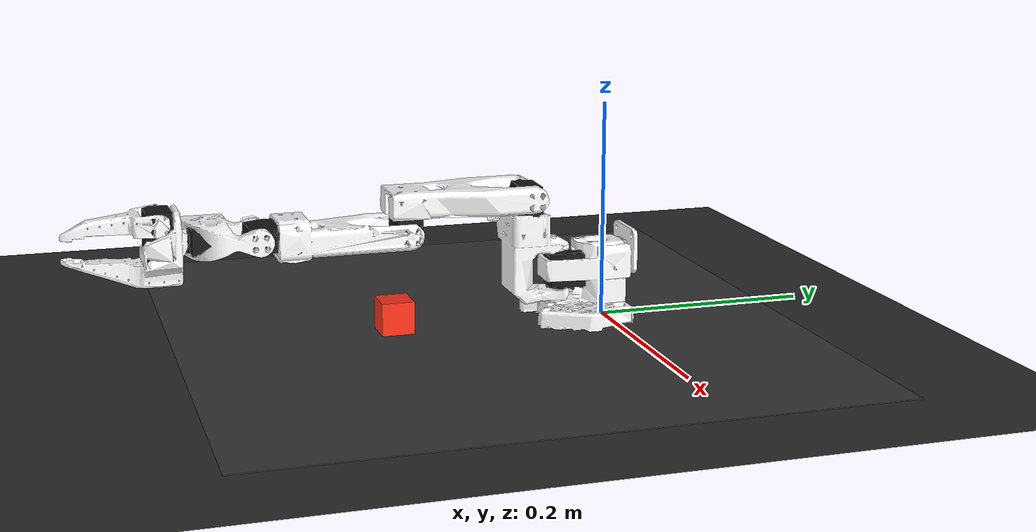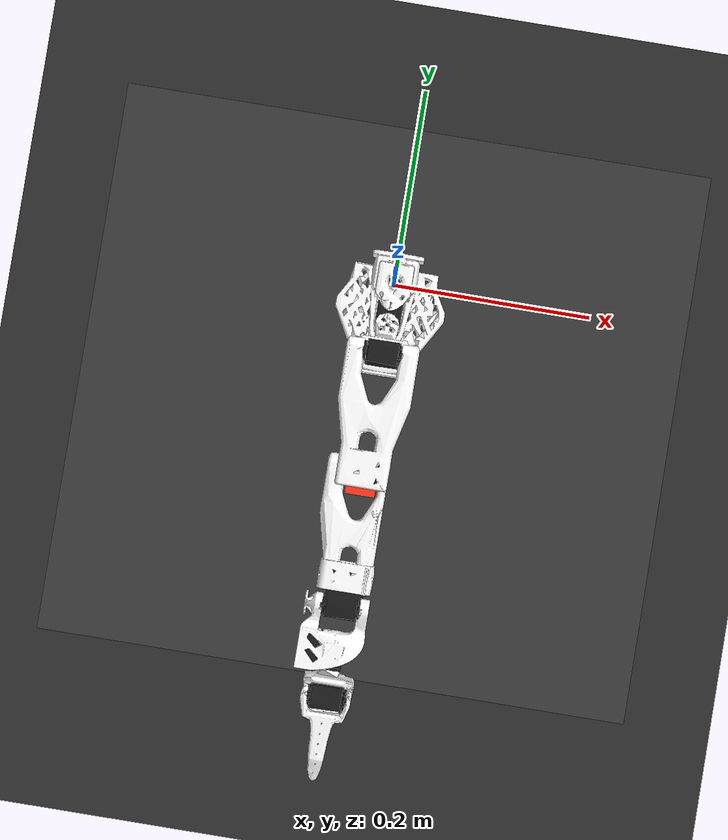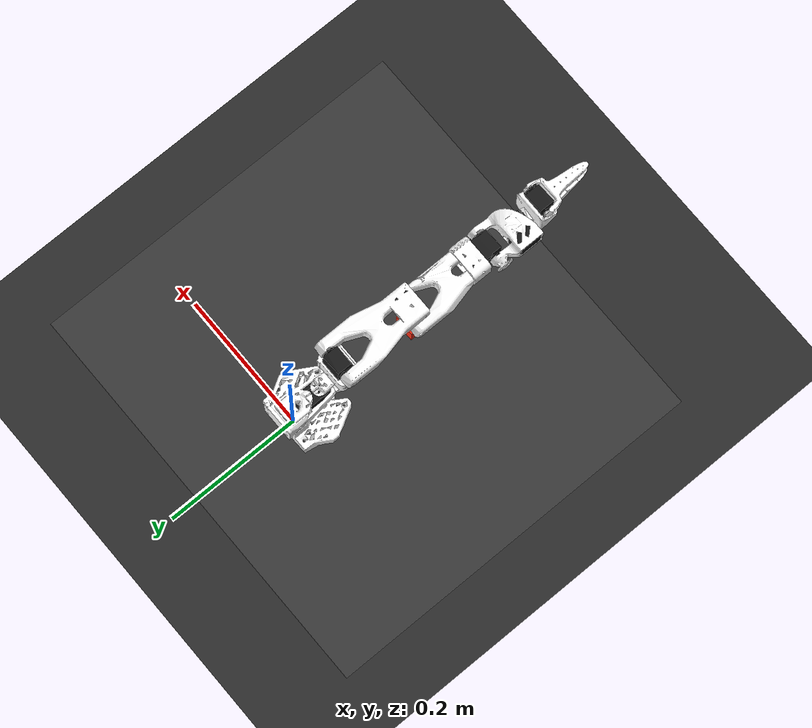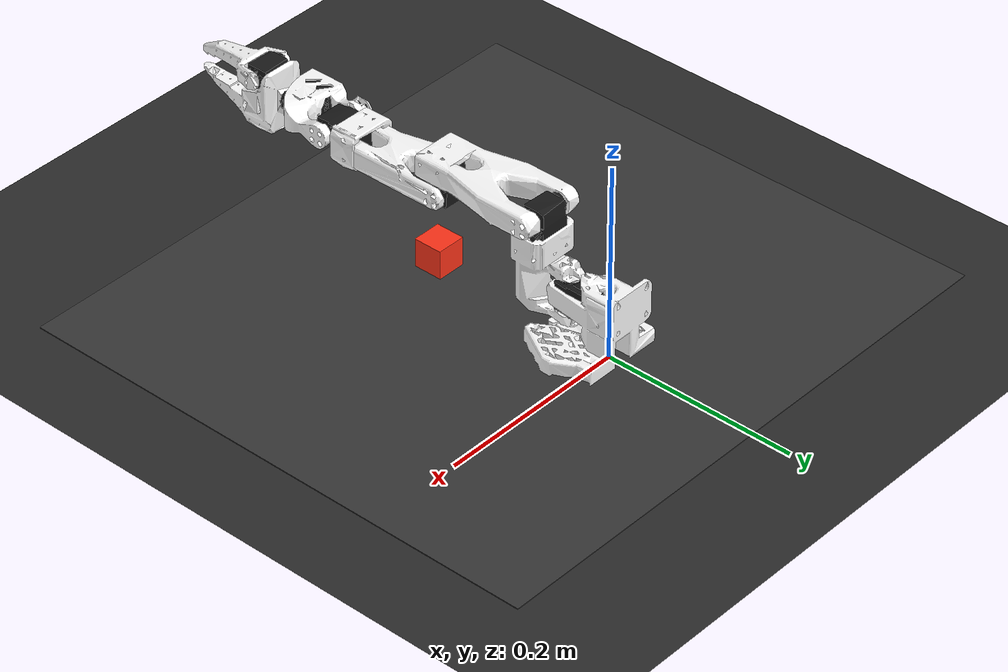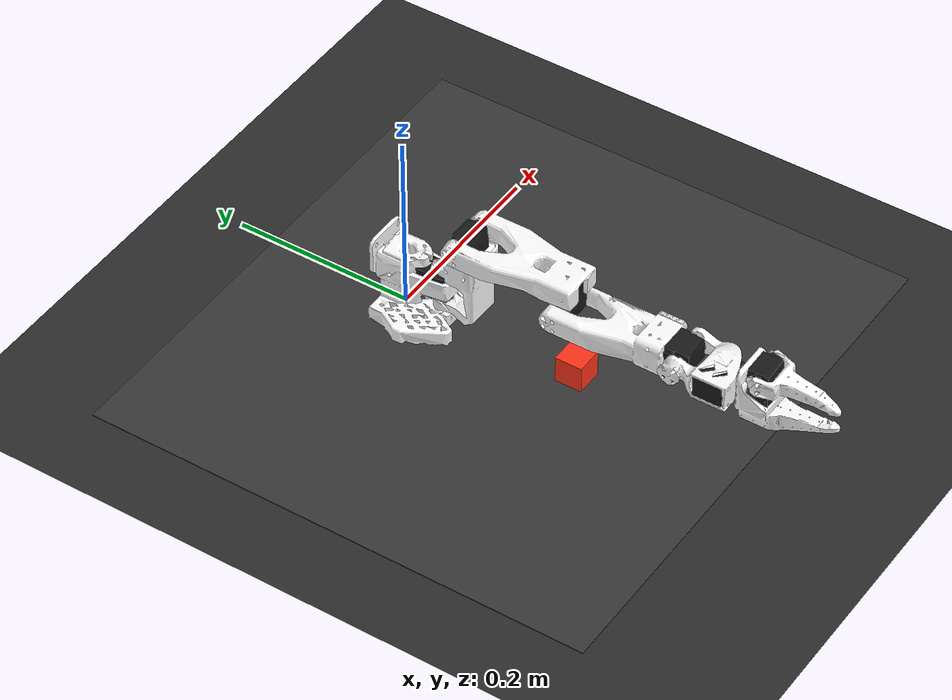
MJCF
<mujoco model="so_arm100_pick">
  <include file="so_arm100_with_cam.xml"/>

  <!-- Free camera default: 3/4 view from robot's left-front -->
  <statistic center="0 -0.15 0.15" extent="0.55"/>

  <visual>
    <headlight diffuse="0.6 0.6 0.6" ambient="0.3 0.3 0.3" specular="0 0 0"/>
    <rgba haze="0.15 0.25 0.35 1"/>
    <global azimuth="140" elevation="-20" offwidth="512" offheight="512"/>
  </visual>

  <asset>
    <texture type="skybox" builtin="gradient" rgb1="0.3 0.5 0.7" rgb2="0 0 0" width="512" height="3072"/>
    <texture type="2d" name="groundplane" builtin="checker" mark="edge" rgb1="0.2 0.2 0.2" rgb2="0.15 0.15 0.15"
      markrgb="0.5 0.5 0.5" width="300" height="300"/>
    <material name="groundplane" texture="groundplane" texuniform="true" texrepeat="6 6" reflectance="0.05"/>
    <material name="table" rgba="0.22 0.22 0.22 1"/>
    <material name="cube" rgba="1 0.2 0.1 1"/>
  </asset>

  <worldbody>
    <!-- Ambient + directional lighting -->
    <light pos="0 -0.1 1.2" dir="0 0.05 -1" directional="true" diffuse="0.7 0.7 0.7"/>
    <light pos="0.4 0.3 0.8" dir="-0.4 -0.5 -0.8" diffuse="0.3 0.3 0.3" specular="0.05 0.05 0.05"/>

    <!-- Floor (dark, contrasts with table surface) -->
    <geom name="floor" size="0 0 0.05" type="plane" material="groundplane"/>

    <geom name="table_surface" type="box" size="0.30 0.28 0.005"
          pos="0.0 -0.12 -0.005" material="table"/>

    <!-- Red cube: 3cm side, sitting on table surface (z=0 + half-height=0.015) -->
    <body name="cube" pos="0.0 -0.20 0.015">
      <freejoint name="cube_joint"/>
      <geom name="cube_geom" type="box" size="0.015 0.015 0.015"
            material="cube" mass="0.05"
            solimp="2 1 0.01" solref="0.01 1" friction="1 0.005 0.0001"/>
    </body>

    <camera name="top" pos="0.0 -0.05 0.85" xyaxes="1 0 0 0 0.993 -0.116"/>
  </worldbody>
</mujoco>

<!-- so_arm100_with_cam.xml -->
<mujoco model="so_arm100">
  <!-- Copy of trs_so_arm100/so_arm100.xml with wrist_cam added to Fixed_Jaw body.
       meshdir points to the menagerie assets so this file can live in simulation/. -->
  <compiler angle="radian" meshdir="/home/rushabh-jetson/mujoco_menagerie/trs_so_arm100/assets/"/>

  <option cone="elliptic" impratio="10"/>

  <asset>
    <material name="white" rgba="1 1 1 1"/>
    <material name="black" rgba="0.1 0.1 0.1 1"/>

    <mesh name="Base" file="Base.stl"/>
    <mesh name="Base_Motor" file="Base_Motor.stl"/>
    <mesh name="Rotation_Pitch" file="Rotation_Pitch.stl"/>
    <mesh name="Rotation_Pitch_Motor" file="Rotation_Pitch_Motor.stl"/>
    <mesh name="Upper_Arm" file="Upper_Arm.stl"/>
    <mesh name="Upper_Arm_Motor" file="Upper_Arm_Motor.stl"/>
    <mesh name="Lower_Arm" file="Lower_Arm.stl"/>
    <mesh name="Lower_Arm_Motor" file="Lower_Arm_Motor.stl"/>
    <mesh name="Wrist_Pitch_Roll" file="Wrist_Pitch_Roll.stl"/>
    <mesh name="Wrist_Pitch_Roll_Motor" file="Wrist_Pitch_Roll_Motor.stl"/>
    <mesh name="Fixed_Jaw" file="Fixed_Jaw.stl"/>
    <mesh name="Fixed_Jaw_Motor" file="Fixed_Jaw_Motor.stl"/>
    <mesh name="Fixed_Jaw_Collision_1" file="Fixed_Jaw_Collision_1.stl"/>
    <mesh name="Fixed_Jaw_Collision_2" file="Fixed_Jaw_Collision_2.stl"/>
    <mesh name="Moving_Jaw" file="Moving_Jaw.stl"/>
    <mesh name="Moving_Jaw_Collision_1" file="Moving_Jaw_Collision_1.stl"/>
    <mesh name="Moving_Jaw_Collision_2" file="Moving_Jaw_Collision_2.stl"/>
    <mesh name="Moving_Jaw_Collision_3" file="Moving_Jaw_Collision_3.stl"/>
  </asset>

  <default>
    <default class="so_arm100">
      <joint frictionloss="0.1" armature="0.1"/>
      <position kp="50" dampratio="1" forcerange="-3.5 3.5"/>
      <default class="Rotation">
        <joint axis="0 1 0" range="-1.92 1.92"/>
      </default>
      <default class="Pitch">
        <joint axis="1 0 0" range="-3.32 0.174"/>
      </default>
      <default class="Elbow">
        <joint axis="1 0 0" range="-0.174 3.14"/>
      </default>
      <default class="Wrist_Pitch">
        <joint axis="1 0 0" range="-1.66 1.66"/>
      </default>
      <default class="Wrist_Roll">
        <joint axis="0 1 0" range="-2.79 2.79"/>
      </default>
      <default class="Jaw">
        <joint axis="0 0 1" range="-0.174 1.75"/>
      </default>
      <default class="visual">
        <geom type="mesh" contype="0" conaffinity="0" density="0" group="2" material="white"/>
        <default class="motor_visual">
          <geom material="black"/>
        </default>
      </default>
      <default class="collision">
        <geom group="3" type="mesh" material="white"/>
        <default class="finger_collision">
          <geom type="box" solimp="2 1 0.01" solref="0.01 1" friction="1 0.005 0.0001"/>
        </default>
      </default>
    </default>
  </default>

  <worldbody>
    <body name="Base" childclass="so_arm100">
      <geom type="mesh" mesh="Base" class="visual"/>
      <geom type="mesh" mesh="Base_Motor" class="motor_visual"/>
      <geom type="mesh" mesh="Base" class="collision"/>
      <body name="Rotation_Pitch" pos="0 -0.0452 0.0165" quat="0.707105 0.707108 0 0">
        <inertial pos="-9.07886e-05 0.0590972 0.031089" quat="0.363978 0.441169 -0.623108 0.533504" mass="0.119226"
          diaginertia="5.94278e-05 5.89975e-05 3.13712e-05"/>
        <joint name="Rotation" class="Rotation"/>
        <geom type="mesh" mesh="Rotation_Pitch" class="visual"/>
        <geom type="mesh" mesh="Rotation_Pitch_Motor" class="motor_visual"/>
        <geom type="mesh" mesh="Rotation_Pitch" class="collision"/>
        <body name="Upper_Arm" pos="0 0.1025 0.0306" euler="1.57079 0 0">
          <inertial pos="-1.72052e-05 0.0701802 0.00310545" quat="0.50104 0.498994 -0.493562 0.50632" mass="0.162409"
            diaginertia="0.000213312 0.000167164 7.01522e-05"/>
          <joint name="Pitch" class="Pitch"/>
          <geom type="mesh" mesh="Upper_Arm" class="visual"/>
          <geom type="mesh" mesh="Upper_Arm_Motor" class="motor_visual"/>
          <geom type="mesh" mesh="Upper_Arm" class="collision"/>
          <body name="Lower_Arm" pos="0 0.11257 0.028" euler="-1.57079 0 0">
            <inertial pos="-0.00339604 0.00137796 0.0768007" quat="0.701995 0.0787996 0.0645626 0.704859"
              mass="0.147968" diaginertia="0.000138803 0.000107748 4.84242e-05"/>
            <joint name="Elbow" class="Elbow"/>
            <geom type="mesh" mesh="Lower_Arm" class="visual"/>
            <geom type="mesh" mesh="Lower_Arm_Motor" class="motor_visual"/>
            <geom type="mesh" mesh="Lower_Arm" class="collision"/>
            <body name="Wrist_Pitch_Roll" pos="0 0.0052 0.1349" euler="-1.57079 0 0">
              <inertial pos="-0.00852653 -0.0352279 -2.34622e-05" quat="-0.0522806 0.705235 0.0549524 0.704905"
                mass="0.0661321" diaginertia="3.45403e-05 2.39041e-05 1.94704e-05"/>
              <joint name="Wrist_Pitch" class="Wrist_Pitch"/>
              <geom type="mesh" mesh="Wrist_Pitch_Roll" class="visual"/>
              <geom type="mesh" mesh="Wrist_Pitch_Roll_Motor" class="motor_visual"/>
              <geom type="mesh" mesh="Wrist_Pitch_Roll" class="collision"/>
              <body name="Fixed_Jaw" pos="0 -0.0601 0" euler="0 1.57079 0">
                <inertial pos="0.00552377 -0.0280167 0.000483583" quat="0.41836 0.620891 -0.350644 0.562599"
                  mass="0.0929859" diaginertia="5.03136e-05 4.64098e-05 2.72961e-05"/>
                <joint name="Wrist_Roll" class="Wrist_Roll"/>
                <!-- Wrist camera: mounted on Fixed_Jaw body above the hinge, looking down toward
                     the jaw tips and workspace. Both jaws visible at top of frame, table below. -->
                <camera name="wrist" pos="0 0.02 0.06" xyaxes="1 0 0 0 0 -1" fovy="100"/>
                <geom type="mesh" mesh="Fixed_Jaw" class="visual"/>
                <geom type="mesh" mesh="Fixed_Jaw_Motor" class="motor_visual"/>
                <geom type="mesh" mesh="Fixed_Jaw_Collision_1" class="collision"/>
                <geom type="mesh" mesh="Fixed_Jaw_Collision_2" class="collision"/>
                <geom class="finger_collision" name="fixed_jaw_pad_1" size="0.001 0.005 0.004" pos="0.0089 -0.1014 0"/>
                <geom class="finger_collision" name="fixed_jaw_pad_2" size="0.001 0.005 0.006" pos="0.0109 -0.0914 0"/>
                <geom class="finger_collision" name="fixed_jaw_pad_3" size="0.001 0.01 0.007" pos="0.0126 -0.0768 0"/>
                <geom class="finger_collision" name="fixed_jaw_pad_4" size="0.001 0.01 0.008" pos="0.0143 -0.0572 0"/>
                <body name="Moving_Jaw" pos="-0.0202 -0.0244 0" quat="1.34924e-11 -3.67321e-06 1 -3.67321e-06">
                  <inertial pos="-0.00161745 -0.0303473 0.000449646" quat="0.696562 0.716737 -0.0239844 -0.0227026"
                    mass="0.0202444" diaginertia="1.11265e-05 8.99651e-06 2.99548e-06"/>
                  <joint name="Jaw" class="Jaw"/>
                  <geom type="mesh" mesh="Moving_Jaw" class="visual"/>
                  <geom type="mesh" mesh="Moving_Jaw_Collision_1" class="collision"/>
                  <geom type="mesh" mesh="Moving_Jaw_Collision_2" class="collision"/>
                  <geom type="mesh" mesh="Moving_Jaw_Collision_3" class="collision"/>
                  <geom class="finger_collision" name="moving_jaw_pad_1" size="0.001 0.005 0.004" pos="-0.0113 -0.077 0"/>
                  <geom class="finger_collision" name="moving_jaw_pad_2" size="0.001 0.005 0.006" pos="-0.0093 -0.067 0"/>
                  <geom class="finger_collision" name="moving_jaw_pad_3" size="0.001 0.01 0.006" pos="-0.0073 -0.055 0"/>
                  <geom class="finger_collision" name="moving_jaw_pad_4" size="0.001 0.01 0.008" pos="-0.0073 -0.035 0"/>
                </body>
              </body>
            </body>
          </body>
        </body>
      </body>
    </body>
  </worldbody>

  <actuator>
    <position class="Rotation" name="Rotation" joint="Rotation" inheritrange="1"/>
    <position class="Pitch" name="Pitch" joint="Pitch" inheritrange="1"/>
    <position class="Elbow" name="Elbow" joint="Elbow" inheritrange="1"/>
    <position class="Wrist_Pitch" name="Wrist_Pitch" joint="Wrist_Pitch" inheritrange="1"/>
    <position class="Wrist_Roll" name="Wrist_Roll" joint="Wrist_Roll" inheritrange="1"/>
    <position class="Jaw" name="Jaw" joint="Jaw" inheritrange="1"/>
  </actuator>

  <contact>
    <exclude body1="Base" body2="Rotation_Pitch"/>
  </contact>

  <keyframe>
    <key name="home" qpos="0 -1.57 1.57 1.57 -1.57 0" ctrl="0 -1.57 1.57 1.57 -1.57 0"/>
    <key name="rest" qpos="0 -3.32 3.11 1.18 0 -0.174" ctrl="0 -3.32 3.11 1.18 0 -0.174"/>
  </keyframe>
</mujoco>
